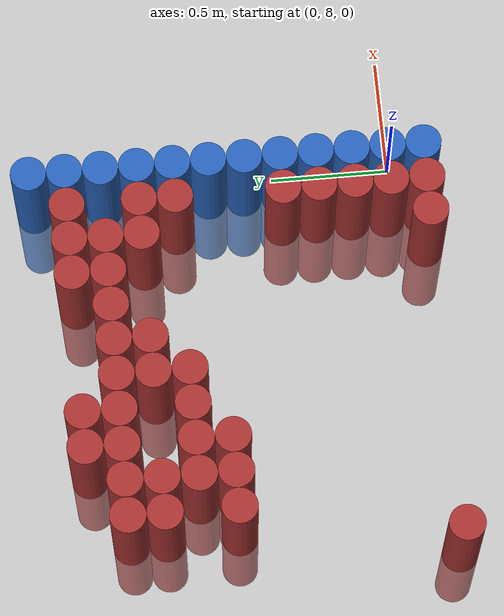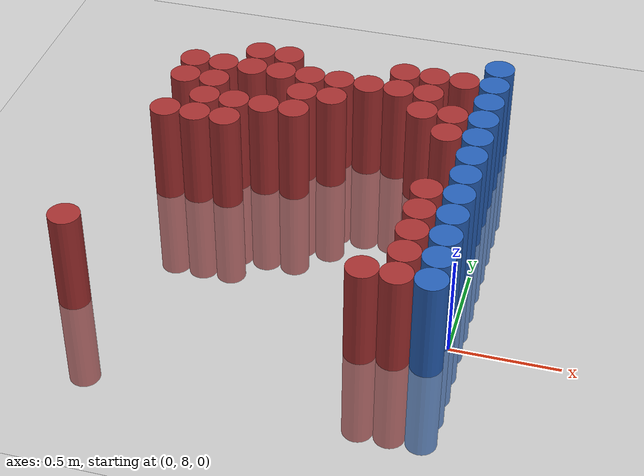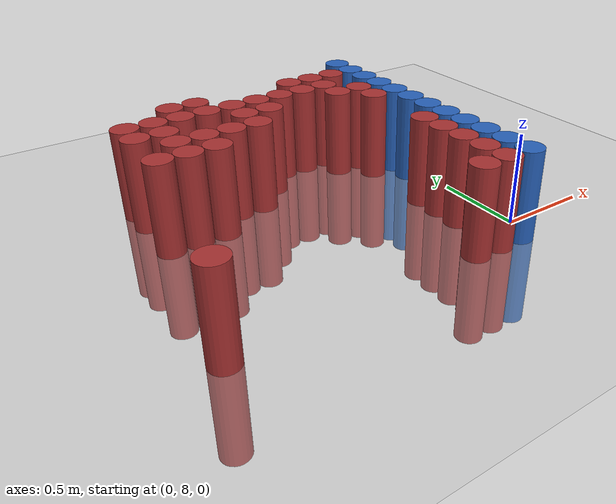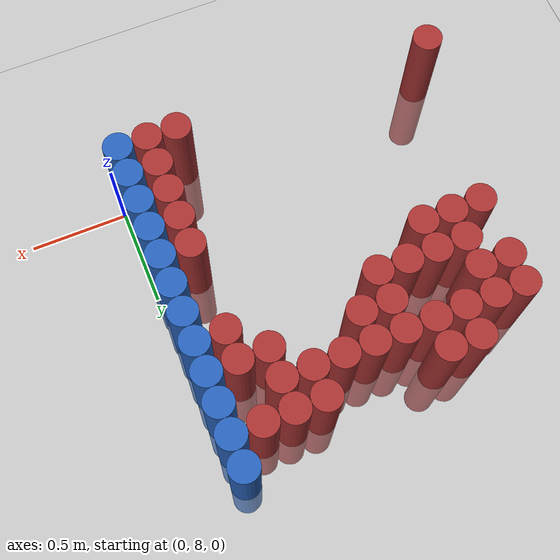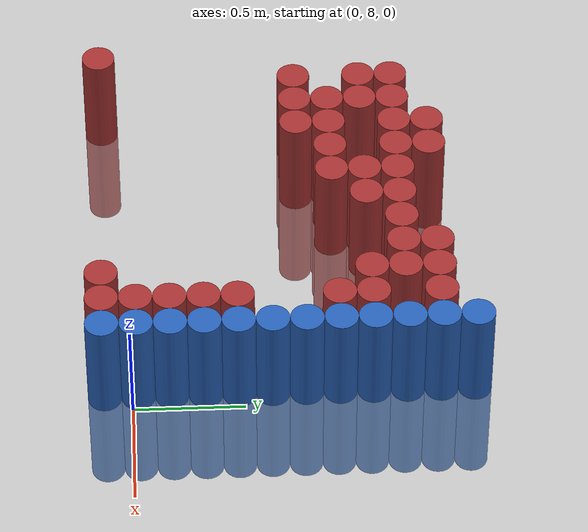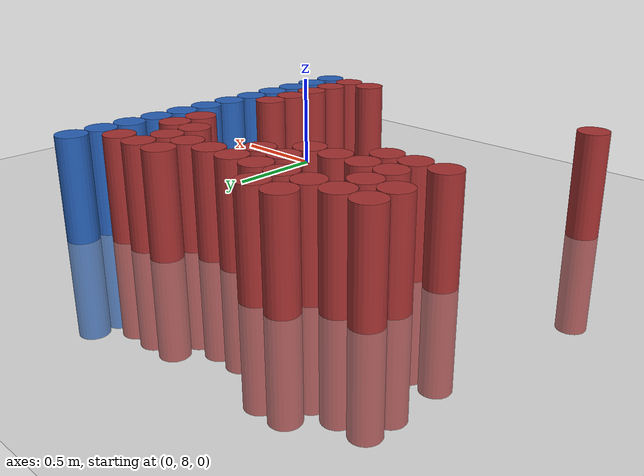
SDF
<sdf version="1.6">
 <world name="default">
  <model name="ground_plane">
   <static>1</static>
   <link name="link">
    <collision name="collision">
     <geometry><plane><normal>0 0 1</normal><size>100 100</size></plane></geometry>
     <surface><friction><ode><mu>100</mu><mu2>50</mu2></ode></friction></surface>
    </collision>
    <visual name="visual">
     <cast_shadows>0</cast_shadows>
     <geometry><plane><normal>0 0 1</normal><size>100 100</size></plane></geometry>
     <material>
      <script><uri>file://media/materials/scripts/gazebo.material</uri><name>Gazebo/Grey</name></script>
     </material>
    </visual>
   </link>
  </model>
  <model name="unit_cylinder_243">
   <static>1</static>
   <pose>-1.725000 7.875000 0.000000 0.000000 0.000000 0.000000</pose>
   <link name="link">
    <inertial>
     <mass>1</mass>
     <inertia><ixx>0.145833</ixx><ixy>0</ixy><ixz>0</ixz><iyy>0.145833</iyy><iyz>0</iyz><izz>0.125</izz></inertia>
    </inertial>
    <collision name="collision">
     <geometry><cylinder><radius>0.075000</radius><length>1</length></cylinder></geometry>
    </collision>
    <visual name="visual">
     <geometry><cylinder><radius>0.075000</radius><length>1</length></cylinder></geometry>
     <material>
      <ambient>0.648000 0.192000 0.192000 1</ambient>
      <diffuse>0.648000 0.192000 0.192000 1</diffuse>
     </material>
     <material>
      <script><name>Gazebo/Grey</name><uri>file://media/materials/scripts/gazebo.material</uri></script>
     </material>
    </visual>
   </link>
  </model>
  <model name="unit_cylinder_248">
   <static>1</static>
   <pose>-1.575000 8.775000 0.000000 0.000000 0.000000 0.000000</pose>
   <link name="link">
    <inertial>
     <mass>1</mass>
     <inertia><ixx>0.145833</ixx><ixy>0</ixy><ixz>0</ixz><iyy>0.145833</iyy><iyz>0</iyz><izz>0.125</izz></inertia>
    </inertial>
    <collision name="collision">
     <geometry><cylinder><radius>0.075000</radius><length>1</length></cylinder></geometry>
    </collision>
    <visual name="visual">
     <geometry><cylinder><radius>0.075000</radius><length>1</length></cylinder></geometry>
     <material>
      <ambient>0.648000 0.192000 0.192000 1</ambient>
      <diffuse>0.648000 0.192000 0.192000 1</diffuse>
     </material>
     <material>
      <script><name>Gazebo/Grey</name><uri>file://media/materials/scripts/gazebo.material</uri></script>
     </material>
    </visual>
   </link>
  </model>
  <model name="unit_cylinder_249">
   <static>1</static>
   <pose>-1.575000 9.075000 0.000000 0.000000 0.000000 0.000000</pose>
   <link name="link">
    <inertial>
     <mass>1</mass>
     <inertia><ixx>0.145833</ixx><ixy>0</ixy><ixz>0</ixz><iyy>0.145833</iyy><iyz>0</iyz><izz>0.125</izz></inertia>
    </inertial>
    <collision name="collision">
     <geometry><cylinder><radius>0.075000</radius><length>1</length></cylinder></geometry>
    </collision>
    <visual name="visual">
     <geometry><cylinder><radius>0.075000</radius><length>1</length></cylinder></geometry>
     <material>
      <ambient>0.648000 0.192000 0.192000 1</ambient>
      <diffuse>0.648000 0.192000 0.192000 1</diffuse>
     </material>
     <material>
      <script><name>Gazebo/Grey</name><uri>file://media/materials/scripts/gazebo.material</uri></script>
     </material>
    </visual>
   </link>
  </model>
  <model name="unit_cylinder_250">
   <static>1</static>
   <pose>-1.575000 9.225000 0.000000 0.000000 0.000000 0.000000</pose>
   <link name="link">
    <inertial>
     <mass>1</mass>
     <inertia><ixx>0.145833</ixx><ixy>0</ixy><ixz>0</ixz><iyy>0.145833</iyy><iyz>0</iyz><izz>0.125</izz></inertia>
    </inertial>
    <collision name="collision">
     <geometry><cylinder><radius>0.075000</radius><length>1</length></cylinder></geometry>
    </collision>
    <visual name="visual">
     <geometry><cylinder><radius>0.075000</radius><length>1</length></cylinder></geometry>
     <material>
      <ambient>0.648000 0.192000 0.192000 1</ambient>
      <diffuse>0.648000 0.192000 0.192000 1</diffuse>
     </material>
     <material>
      <script><name>Gazebo/Grey</name><uri>file://media/materials/scripts/gazebo.material</uri></script>
     </material>
    </visual>
   </link>
  </model>
  <model name="unit_cylinder_255">
   <static>1</static>
   <pose>-1.425000 8.775000 0.000000 0.000000 0.000000 0.000000</pose>
   <link name="link">
    <inertial>
     <mass>1</mass>
     <inertia><ixx>0.145833</ixx><ixy>0</ixy><ixz>0</ixz><iyy>0.145833</iyy><iyz>0</iyz><izz>0.125</izz></inertia>
    </inertial>
    <collision name="collision">
     <geometry><cylinder><radius>0.075000</radius><length>1</length></cylinder></geometry>
    </collision>
    <visual name="visual">
     <geometry><cylinder><radius>0.075000</radius><length>1</length></cylinder></geometry>
     <material>
      <ambient>0.648000 0.192000 0.192000 1</ambient>
      <diffuse>0.648000 0.192000 0.192000 1</diffuse>
     </material>
     <material>
      <script><name>Gazebo/Grey</name><uri>file://media/materials/scripts/gazebo.material</uri></script>
     </material>
    </visual>
   </link>
  </model>
  <model name="unit_cylinder_256">
   <static>1</static>
   <pose>-1.425000 8.925000 0.000000 0.000000 0.000000 0.000000</pose>
   <link name="link">
    <inertial>
     <mass>1</mass>
     <inertia><ixx>0.145833</ixx><ixy>0</ixy><ixz>0</ixz><iyy>0.145833</iyy><iyz>0</iyz><izz>0.125</izz></inertia>
    </inertial>
    <collision name="collision">
     <geometry><cylinder><radius>0.075000</radius><length>1</length></cylinder></geometry>
    </collision>
    <visual name="visual">
     <geometry><cylinder><radius>0.075000</radius><length>1</length></cylinder></geometry>
     <material>
      <ambient>0.648000 0.192000 0.192000 1</ambient>
      <diffuse>0.648000 0.192000 0.192000 1</diffuse>
     </material>
     <material>
      <script><name>Gazebo/Grey</name><uri>file://media/materials/scripts/gazebo.material</uri></script>
     </material>
    </visual>
   </link>
  </model>
  <model name="unit_cylinder_257">
   <static>1</static>
   <pose>-1.425000 9.075000 0.000000 0.000000 0.000000 0.000000</pose>
   <link name="link">
    <inertial>
     <mass>1</mass>
     <inertia><ixx>0.145833</ixx><ixy>0</ixy><ixz>0</ixz><iyy>0.145833</iyy><iyz>0</iyz><izz>0.125</izz></inertia>
    </inertial>
    <collision name="collision">
     <geometry><cylinder><radius>0.075000</radius><length>1</length></cylinder></geometry>
    </collision>
    <visual name="visual">
     <geometry><cylinder><radius>0.075000</radius><length>1</length></cylinder></geometry>
     <material>
      <ambient>0.648000 0.192000 0.192000 1</ambient>
      <diffuse>0.648000 0.192000 0.192000 1</diffuse>
     </material>
     <material>
      <script><name>Gazebo/Grey</name><uri>file://media/materials/scripts/gazebo.material</uri></script>
     </material>
    </visual>
   </link>
  </model>
  <model name="unit_cylinder_258">
   <static>1</static>
   <pose>-1.425000 9.225000 0.000000 0.000000 0.000000 0.000000</pose>
   <link name="link">
    <inertial>
     <mass>1</mass>
     <inertia><ixx>0.145833</ixx><ixy>0</ixy><ixz>0</ixz><iyy>0.145833</iyy><iyz>0</iyz><izz>0.125</izz></inertia>
    </inertial>
    <collision name="collision">
     <geometry><cylinder><radius>0.075000</radius><length>1</length></cylinder></geometry>
    </collision>
    <visual name="visual">
     <geometry><cylinder><radius>0.075000</radius><length>1</length></cylinder></geometry>
     <material>
      <ambient>0.648000 0.192000 0.192000 1</ambient>
      <diffuse>0.648000 0.192000 0.192000 1</diffuse>
     </material>
     <material>
      <script><name>Gazebo/Grey</name><uri>file://media/materials/scripts/gazebo.material</uri></script>
     </material>
    </visual>
   </link>
  </model>
  <model name="unit_cylinder_260">
   <static>1</static>
   <pose>-1.275000 8.775000 0.000000 0.000000 0.000000 0.000000</pose>
   <link name="link">
    <inertial>
     <mass>1</mass>
     <inertia><ixx>0.145833</ixx><ixy>0</ixy><ixz>0</ixz><iyy>0.145833</iyy><iyz>0</iyz><izz>0.125</izz></inertia>
    </inertial>
    <collision name="collision">
     <geometry><cylinder><radius>0.075000</radius><length>1</length></cylinder></geometry>
    </collision>
    <visual name="visual">
     <geometry><cylinder><radius>0.075000</radius><length>1</length></cylinder></geometry>
     <material>
      <ambient>0.648000 0.192000 0.192000 1</ambient>
      <diffuse>0.648000 0.192000 0.192000 1</diffuse>
     </material>
     <material>
      <script><name>Gazebo/Grey</name><uri>file://media/materials/scripts/gazebo.material</uri></script>
     </material>
    </visual>
   </link>
  </model>
  <model name="unit_cylinder_261">
   <static>1</static>
   <pose>-1.275000 8.925000 0.000000 0.000000 0.000000 0.000000</pose>
   <link name="link">
    <inertial>
     <mass>1</mass>
     <inertia><ixx>0.145833</ixx><ixy>0</ixy><ixz>0</ixz><iyy>0.145833</iyy><iyz>0</iyz><izz>0.125</izz></inertia>
    </inertial>
    <collision name="collision">
     <geometry><cylinder><radius>0.075000</radius><length>1</length></cylinder></geometry>
    </collision>
    <visual name="visual">
     <geometry><cylinder><radius>0.075000</radius><length>1</length></cylinder></geometry>
     <material>
      <ambient>0.648000 0.192000 0.192000 1</ambient>
      <diffuse>0.648000 0.192000 0.192000 1</diffuse>
     </material>
     <material>
      <script><name>Gazebo/Grey</name><uri>file://media/materials/scripts/gazebo.material</uri></script>
     </material>
    </visual>
   </link>
  </model>
  <model name="unit_cylinder_262">
   <static>1</static>
   <pose>-1.275000 9.225000 0.000000 0.000000 0.000000 0.000000</pose>
   <link name="link">
    <inertial>
     <mass>1</mass>
     <inertia><ixx>0.145833</ixx><ixy>0</ixy><ixz>0</ixz><iyy>0.145833</iyy><iyz>0</iyz><izz>0.125</izz></inertia>
    </inertial>
    <collision name="collision">
     <geometry><cylinder><radius>0.075000</radius><length>1</length></cylinder></geometry>
    </collision>
    <visual name="visual">
     <geometry><cylinder><radius>0.075000</radius><length>1</length></cylinder></geometry>
     <material>
      <ambient>0.648000 0.192000 0.192000 1</ambient>
      <diffuse>0.648000 0.192000 0.192000 1</diffuse>
     </material>
     <material>
      <script><name>Gazebo/Grey</name><uri>file://media/materials/scripts/gazebo.material</uri></script>
     </material>
    </visual>
   </link>
  </model>
  <model name="unit_cylinder_263">
   <static>1</static>
   <pose>-1.275000 9.375000 0.000000 0.000000 0.000000 0.000000</pose>
   <link name="link">
    <inertial>
     <mass>1</mass>
     <inertia><ixx>0.145833</ixx><ixy>0</ixy><ixz>0</ixz><iyy>0.145833</iyy><iyz>0</iyz><izz>0.125</izz></inertia>
    </inertial>
    <collision name="collision">
     <geometry><cylinder><radius>0.075000</radius><length>1</length></cylinder></geometry>
    </collision>
    <visual name="visual">
     <geometry><cylinder><radius>0.075000</radius><length>1</length></cylinder></geometry>
     <material>
      <ambient>0.648000 0.192000 0.192000 1</ambient>
      <diffuse>0.648000 0.192000 0.192000 1</diffuse>
     </material>
     <material>
      <script><name>Gazebo/Grey</name><uri>file://media/materials/scripts/gazebo.material</uri></script>
     </material>
    </visual>
   </link>
  </model>
  <model name="unit_cylinder_264">
   <static>1</static>
   <pose>-1.125000 8.925000 0.000000 0.000000 0.000000 0.000000</pose>
   <link name="link">
    <inertial>
     <mass>1</mass>
     <inertia><ixx>0.145833</ixx><ixy>0</ixy><ixz>0</ixz><iyy>0.145833</iyy><iyz>0</iyz><izz>0.125</izz></inertia>
    </inertial>
    <collision name="collision">
     <geometry><cylinder><radius>0.075000</radius><length>1</length></cylinder></geometry>
    </collision>
    <visual name="visual">
     <geometry><cylinder><radius>0.075000</radius><length>1</length></cylinder></geometry>
     <material>
      <ambient>0.648000 0.192000 0.192000 1</ambient>
      <diffuse>0.648000 0.192000 0.192000 1</diffuse>
     </material>
     <material>
      <script><name>Gazebo/Grey</name><uri>file://media/materials/scripts/gazebo.material</uri></script>
     </material>
    </visual>
   </link>
  </model>
  <model name="unit_cylinder_265">
   <static>1</static>
   <pose>-1.125000 9.225000 0.000000 0.000000 0.000000 0.000000</pose>
   <link name="link">
    <inertial>
     <mass>1</mass>
     <inertia><ixx>0.145833</ixx><ixy>0</ixy><ixz>0</ixz><iyy>0.145833</iyy><iyz>0</iyz><izz>0.125</izz></inertia>
    </inertial>
    <collision name="collision">
     <geometry><cylinder><radius>0.075000</radius><length>1</length></cylinder></geometry>
    </collision>
    <visual name="visual">
     <geometry><cylinder><radius>0.075000</radius><length>1</length></cylinder></geometry>
     <material>
      <ambient>0.648000 0.192000 0.192000 1</ambient>
      <diffuse>0.648000 0.192000 0.192000 1</diffuse>
     </material>
     <material>
      <script><name>Gazebo/Grey</name><uri>file://media/materials/scripts/gazebo.material</uri></script>
     </material>
    </visual>
   </link>
  </model>
  <model name="unit_cylinder_266">
   <static>1</static>
   <pose>-1.125000 9.375000 0.000000 0.000000 0.000000 0.000000</pose>
   <link name="link">
    <inertial>
     <mass>1</mass>
     <inertia><ixx>0.145833</ixx><ixy>0</ixy><ixz>0</ixz><iyy>0.145833</iyy><iyz>0</iyz><izz>0.125</izz></inertia>
    </inertial>
    <collision name="collision">
     <geometry><cylinder><radius>0.075000</radius><length>1</length></cylinder></geometry>
    </collision>
    <visual name="visual">
     <geometry><cylinder><radius>0.075000</radius><length>1</length></cylinder></geometry>
     <material>
      <ambient>0.648000 0.192000 0.192000 1</ambient>
      <diffuse>0.648000 0.192000 0.192000 1</diffuse>
     </material>
     <material>
      <script><name>Gazebo/Grey</name><uri>file://media/materials/scripts/gazebo.material</uri></script>
     </material>
    </visual>
   </link>
  </model>
  <model name="unit_cylinder_267">
   <static>1</static>
   <pose>-0.975000 8.925000 0.000000 0.000000 0.000000 0.000000</pose>
   <link name="link">
    <inertial>
     <mass>1</mass>
     <inertia><ixx>0.145833</ixx><ixy>0</ixy><ixz>0</ixz><iyy>0.145833</iyy><iyz>0</iyz><izz>0.125</izz></inertia>
    </inertial>
    <collision name="collision">
     <geometry><cylinder><radius>0.075000</radius><length>1</length></cylinder></geometry>
    </collision>
    <visual name="visual">
     <geometry><cylinder><radius>0.075000</radius><length>1</length></cylinder></geometry>
     <material>
      <ambient>0.648000 0.192000 0.192000 1</ambient>
      <diffuse>0.648000 0.192000 0.192000 1</diffuse>
     </material>
     <material>
      <script><name>Gazebo/Grey</name><uri>file://media/materials/scripts/gazebo.material</uri></script>
     </material>
    </visual>
   </link>
  </model>
  <model name="unit_cylinder_268">
   <static>1</static>
   <pose>-0.975000 9.075000 0.000000 0.000000 0.000000 0.000000</pose>
   <link name="link">
    <inertial>
     <mass>1</mass>
     <inertia><ixx>0.145833</ixx><ixy>0</ixy><ixz>0</ixz><iyy>0.145833</iyy><iyz>0</iyz><izz>0.125</izz></inertia>
    </inertial>
    <collision name="collision">
     <geometry><cylinder><radius>0.075000</radius><length>1</length></cylinder></geometry>
    </collision>
    <visual name="visual">
     <geometry><cylinder><radius>0.075000</radius><length>1</length></cylinder></geometry>
     <material>
      <ambient>0.648000 0.192000 0.192000 1</ambient>
      <diffuse>0.648000 0.192000 0.192000 1</diffuse>
     </material>
     <material>
      <script><name>Gazebo/Grey</name><uri>file://media/materials/scripts/gazebo.material</uri></script>
     </material>
    </visual>
   </link>
  </model>
  <model name="unit_cylinder_269">
   <static>1</static>
   <pose>-0.975000 9.225000 0.000000 0.000000 0.000000 0.000000</pose>
   <link name="link">
    <inertial>
     <mass>1</mass>
     <inertia><ixx>0.145833</ixx><ixy>0</ixy><ixz>0</ixz><iyy>0.145833</iyy><iyz>0</iyz><izz>0.125</izz></inertia>
    </inertial>
    <collision name="collision">
     <geometry><cylinder><radius>0.075000</radius><length>1</length></cylinder></geometry>
    </collision>
    <visual name="visual">
     <geometry><cylinder><radius>0.075000</radius><length>1</length></cylinder></geometry>
     <material>
      <ambient>0.648000 0.192000 0.192000 1</ambient>
      <diffuse>0.648000 0.192000 0.192000 1</diffuse>
     </material>
     <material>
      <script><name>Gazebo/Grey</name><uri>file://media/materials/scripts/gazebo.material</uri></script>
     </material>
    </visual>
   </link>
  </model>
  <model name="unit_cylinder_270">
   <static>1</static>
   <pose>-0.825000 9.075000 0.000000 0.000000 0.000000 0.000000</pose>
   <link name="link">
    <inertial>
     <mass>1</mass>
     <inertia><ixx>0.145833</ixx><ixy>0</ixy><ixz>0</ixz><iyy>0.145833</iyy><iyz>0</iyz><izz>0.125</izz></inertia>
    </inertial>
    <collision name="collision">
     <geometry><cylinder><radius>0.075000</radius><length>1</length></cylinder></geometry>
    </collision>
    <visual name="visual">
     <geometry><cylinder><radius>0.075000</radius><length>1</length></cylinder></geometry>
     <material>
      <ambient>0.648000 0.192000 0.192000 1</ambient>
      <diffuse>0.648000 0.192000 0.192000 1</diffuse>
     </material>
     <material>
      <script><name>Gazebo/Grey</name><uri>file://media/materials/scripts/gazebo.material</uri></script>
     </material>
    </visual>
   </link>
  </model>
  <model name="unit_cylinder_271">
   <static>1</static>
   <pose>-0.825000 9.225000 0.000000 0.000000 0.000000 0.000000</pose>
   <link name="link">
    <inertial>
     <mass>1</mass>
     <inertia><ixx>0.145833</ixx><ixy>0</ixy><ixz>0</ixz><iyy>0.145833</iyy><iyz>0</iyz><izz>0.125</izz></inertia>
    </inertial>
    <collision name="collision">
     <geometry><cylinder><radius>0.075000</radius><length>1</length></cylinder></geometry>
    </collision>
    <visual name="visual">
     <geometry><cylinder><radius>0.075000</radius><length>1</length></cylinder></geometry>
     <material>
      <ambient>0.648000 0.192000 0.192000 1</ambient>
      <diffuse>0.648000 0.192000 0.192000 1</diffuse>
     </material>
     <material>
      <script><name>Gazebo/Grey</name><uri>file://media/materials/scripts/gazebo.material</uri></script>
     </material>
    </visual>
   </link>
  </model>
  <model name="unit_cylinder_272">
   <static>1</static>
   <pose>-0.675000 9.225000 0.000000 0.000000 0.000000 0.000000</pose>
   <link name="link">
    <inertial>
     <mass>1</mass>
     <inertia><ixx>0.145833</ixx><ixy>0</ixy><ixz>0</ixz><iyy>0.145833</iyy><iyz>0</iyz><izz>0.125</izz></inertia>
    </inertial>
    <collision name="collision">
     <geometry><cylinder><radius>0.075000</radius><length>1</length></cylinder></geometry>
    </collision>
    <visual name="visual">
     <geometry><cylinder><radius>0.075000</radius><length>1</length></cylinder></geometry>
     <material>
      <ambient>0.648000 0.192000 0.192000 1</ambient>
      <diffuse>0.648000 0.192000 0.192000 1</diffuse>
     </material>
     <material>
      <script><name>Gazebo/Grey</name><uri>file://media/materials/scripts/gazebo.material</uri></script>
     </material>
    </visual>
   </link>
  </model>
  <model name="unit_cylinder_273">
   <static>1</static>
   <pose>-0.525000 9.225000 0.000000 0.000000 0.000000 0.000000</pose>
   <link name="link">
    <inertial>
     <mass>1</mass>
     <inertia><ixx>0.145833</ixx><ixy>0</ixy><ixz>0</ixz><iyy>0.145833</iyy><iyz>0</iyz><izz>0.125</izz></inertia>
    </inertial>
    <collision name="collision">
     <geometry><cylinder><radius>0.075000</radius><length>1</length></cylinder></geometry>
    </collision>
    <visual name="visual">
     <geometry><cylinder><radius>0.075000</radius><length>1</length></cylinder></geometry>
     <material>
      <ambient>0.648000 0.192000 0.192000 1</ambient>
      <diffuse>0.648000 0.192000 0.192000 1</diffuse>
     </material>
     <material>
      <script><name>Gazebo/Grey</name><uri>file://media/materials/scripts/gazebo.material</uri></script>
     </material>
    </visual>
   </link>
  </model>
  <model name="unit_cylinder_274">
   <static>1</static>
   <pose>-0.525000 9.375000 0.000000 0.000000 0.000000 0.000000</pose>
   <link name="link">
    <inertial>
     <mass>1</mass>
     <inertia><ixx>0.145833</ixx><ixy>0</ixy><ixz>0</ixz><iyy>0.145833</iyy><iyz>0</iyz><izz>0.125</izz></inertia>
    </inertial>
    <collision name="collision">
     <geometry><cylinder><radius>0.075000</radius><length>1</length></cylinder></geometry>
    </collision>
    <visual name="visual">
     <geometry><cylinder><radius>0.075000</radius><length>1</length></cylinder></geometry>
     <material>
      <ambient>0.648000 0.192000 0.192000 1</ambient>
      <diffuse>0.648000 0.192000 0.192000 1</diffuse>
     </material>
     <material>
      <script><name>Gazebo/Grey</name><uri>file://media/materials/scripts/gazebo.material</uri></script>
     </material>
    </visual>
   </link>
  </model>
  <model name="unit_cylinder_276">
   <static>1</static>
   <pose>-0.375000 7.875000 0.000000 0.000000 0.000000 0.000000</pose>
   <link name="link">
    <inertial>
     <mass>1</mass>
     <inertia><ixx>0.145833</ixx><ixy>0</ixy><ixz>0</ixz><iyy>0.145833</iyy><iyz>0</iyz><izz>0.125</izz></inertia>
    </inertial>
    <collision name="collision">
     <geometry><cylinder><radius>0.075000</radius><length>1</length></cylinder></geometry>
    </collision>
    <visual name="visual">
     <geometry><cylinder><radius>0.075000</radius><length>1</length></cylinder></geometry>
     <material>
      <ambient>0.648000 0.192000 0.192000 1</ambient>
      <diffuse>0.648000 0.192000 0.192000 1</diffuse>
     </material>
     <material>
      <script><name>Gazebo/Grey</name><uri>file://media/materials/scripts/gazebo.material</uri></script>
     </material>
    </visual>
   </link>
  </model>
  <model name="unit_cylinder_277">
   <static>1</static>
   <pose>-0.375000 9.075000 0.000000 0.000000 0.000000 0.000000</pose>
   <link name="link">
    <inertial>
     <mass>1</mass>
     <inertia><ixx>0.145833</ixx><ixy>0</ixy><ixz>0</ixz><iyy>0.145833</iyy><iyz>0</iyz><izz>0.125</izz></inertia>
    </inertial>
    <collision name="collision">
     <geometry><cylinder><radius>0.075000</radius><length>1</length></cylinder></geometry>
    </collision>
    <visual name="visual">
     <geometry><cylinder><radius>0.075000</radius><length>1</length></cylinder></geometry>
     <material>
      <ambient>0.648000 0.192000 0.192000 1</ambient>
      <diffuse>0.648000 0.192000 0.192000 1</diffuse>
     </material>
     <material>
      <script><name>Gazebo/Grey</name><uri>file://media/materials/scripts/gazebo.material</uri></script>
     </material>
    </visual>
   </link>
  </model>
  <model name="unit_cylinder_278">
   <static>1</static>
   <pose>-0.375000 9.225000 0.000000 0.000000 0.000000 0.000000</pose>
   <link name="link">
    <inertial>
     <mass>1</mass>
     <inertia><ixx>0.145833</ixx><ixy>0</ixy><ixz>0</ixz><iyy>0.145833</iyy><iyz>0</iyz><izz>0.125</izz></inertia>
    </inertial>
    <collision name="collision">
     <geometry><cylinder><radius>0.075000</radius><length>1</length></cylinder></geometry>
    </collision>
    <visual name="visual">
     <geometry><cylinder><radius>0.075000</radius><length>1</length></cylinder></geometry>
     <material>
      <ambient>0.648000 0.192000 0.192000 1</ambient>
      <diffuse>0.648000 0.192000 0.192000 1</diffuse>
     </material>
     <material>
      <script><name>Gazebo/Grey</name><uri>file://media/materials/scripts/gazebo.material</uri></script>
     </material>
    </visual>
   </link>
  </model>
  <model name="unit_cylinder_279">
   <static>1</static>
   <pose>-0.375000 9.375000 0.000000 0.000000 0.000000 0.000000</pose>
   <link name="link">
    <inertial>
     <mass>1</mass>
     <inertia><ixx>0.145833</ixx><ixy>0</ixy><ixz>0</ixz><iyy>0.145833</iyy><iyz>0</iyz><izz>0.125</izz></inertia>
    </inertial>
    <collision name="collision">
     <geometry><cylinder><radius>0.075000</radius><length>1</length></cylinder></geometry>
    </collision>
    <visual name="visual">
     <geometry><cylinder><radius>0.075000</radius><length>1</length></cylinder></geometry>
     <material>
      <ambient>0.648000 0.192000 0.192000 1</ambient>
      <diffuse>0.648000 0.192000 0.192000 1</diffuse>
     </material>
     <material>
      <script><name>Gazebo/Grey</name><uri>file://media/materials/scripts/gazebo.material</uri></script>
     </material>
    </visual>
   </link>
  </model>
  <model name="unit_cylinder_292">
   <static>1</static>
   <pose>-0.225000 7.875000 0.000000 0.000000 0.000000 0.000000</pose>
   <link name="link">
    <inertial>
     <mass>1</mass>
     <inertia><ixx>0.145833</ixx><ixy>0</ixy><ixz>0</ixz><iyy>0.145833</iyy><iyz>0</iyz><izz>0.125</izz></inertia>
    </inertial>
    <collision name="collision">
     <geometry><cylinder><radius>0.075000</radius><length>1</length></cylinder></geometry>
    </collision>
    <visual name="visual">
     <geometry><cylinder><radius>0.075000</radius><length>1</length></cylinder></geometry>
     <material>
      <ambient>0.648000 0.192000 0.192000 1</ambient>
      <diffuse>0.648000 0.192000 0.192000 1</diffuse>
     </material>
     <material>
      <script><name>Gazebo/Grey</name><uri>file://media/materials/scripts/gazebo.material</uri></script>
     </material>
    </visual>
   </link>
  </model>
  <model name="unit_cylinder_293">
   <static>1</static>
   <pose>-0.225000 8.025000 0.000000 0.000000 0.000000 0.000000</pose>
   <link name="link">
    <inertial>
     <mass>1</mass>
     <inertia><ixx>0.145833</ixx><ixy>0</ixy><ixz>0</ixz><iyy>0.145833</iyy><iyz>0</iyz><izz>0.125</izz></inertia>
    </inertial>
    <collision name="collision">
     <geometry><cylinder><radius>0.075000</radius><length>1</length></cylinder></geometry>
    </collision>
    <visual name="visual">
     <geometry><cylinder><radius>0.075000</radius><length>1</length></cylinder></geometry>
     <material>
      <ambient>0.648000 0.192000 0.192000 1</ambient>
      <diffuse>0.648000 0.192000 0.192000 1</diffuse>
     </material>
     <material>
      <script><name>Gazebo/Grey</name><uri>file://media/materials/scripts/gazebo.material</uri></script>
     </material>
    </visual>
   </link>
  </model>
  <model name="unit_cylinder_294">
   <static>1</static>
   <pose>-0.225000 8.175000 0.000000 0.000000 0.000000 0.000000</pose>
   <link name="link">
    <inertial>
     <mass>1</mass>
     <inertia><ixx>0.145833</ixx><ixy>0</ixy><ixz>0</ixz><iyy>0.145833</iyy><iyz>0</iyz><izz>0.125</izz></inertia>
    </inertial>
    <collision name="collision">
     <geometry><cylinder><radius>0.075000</radius><length>1</length></cylinder></geometry>
    </collision>
    <visual name="visual">
     <geometry><cylinder><radius>0.075000</radius><length>1</length></cylinder></geometry>
     <material>
      <ambient>0.648000 0.192000 0.192000 1</ambient>
      <diffuse>0.648000 0.192000 0.192000 1</diffuse>
     </material>
     <material>
      <script><name>Gazebo/Grey</name><uri>file://media/materials/scripts/gazebo.material</uri></script>
     </material>
    </visual>
   </link>
  </model>
  <model name="unit_cylinder_295">
   <static>1</static>
   <pose>-0.225000 8.325000 0.000000 0.000000 0.000000 0.000000</pose>
   <link name="link">
    <inertial>
     <mass>1</mass>
     <inertia><ixx>0.145833</ixx><ixy>0</ixy><ixz>0</ixz><iyy>0.145833</iyy><iyz>0</iyz><izz>0.125</izz></inertia>
    </inertial>
    <collision name="collision">
     <geometry><cylinder><radius>0.075000</radius><length>1</length></cylinder></geometry>
    </collision>
    <visual name="visual">
     <geometry><cylinder><radius>0.075000</radius><length>1</length></cylinder></geometry>
     <material>
      <ambient>0.648000 0.192000 0.192000 1</ambient>
      <diffuse>0.648000 0.192000 0.192000 1</diffuse>
     </material>
     <material>
      <script><name>Gazebo/Grey</name><uri>file://media/materials/scripts/gazebo.material</uri></script>
     </material>
    </visual>
   </link>
  </model>
  <model name="unit_cylinder_296">
   <static>1</static>
   <pose>-0.225000 8.475000 0.000000 0.000000 0.000000 0.000000</pose>
   <link name="link">
    <inertial>
     <mass>1</mass>
     <inertia><ixx>0.145833</ixx><ixy>0</ixy><ixz>0</ixz><iyy>0.145833</iyy><iyz>0</iyz><izz>0.125</izz></inertia>
    </inertial>
    <collision name="collision">
     <geometry><cylinder><radius>0.075000</radius><length>1</length></cylinder></geometry>
    </collision>
    <visual name="visual">
     <geometry><cylinder><radius>0.075000</radius><length>1</length></cylinder></geometry>
     <material>
      <ambient>0.648000 0.192000 0.192000 1</ambient>
      <diffuse>0.648000 0.192000 0.192000 1</diffuse>
     </material>
     <material>
      <script><name>Gazebo/Grey</name><uri>file://media/materials/scripts/gazebo.material</uri></script>
     </material>
    </visual>
   </link>
  </model>
  <model name="unit_cylinder_297">
   <static>1</static>
   <pose>-0.225000 8.925000 0.000000 0.000000 0.000000 0.000000</pose>
   <link name="link">
    <inertial>
     <mass>1</mass>
     <inertia><ixx>0.145833</ixx><ixy>0</ixy><ixz>0</ixz><iyy>0.145833</iyy><iyz>0</iyz><izz>0.125</izz></inertia>
    </inertial>
    <collision name="collision">
     <geometry><cylinder><radius>0.075000</radius><length>1</length></cylinder></geometry>
    </collision>
    <visual name="visual">
     <geometry><cylinder><radius>0.075000</radius><length>1</length></cylinder></geometry>
     <material>
      <ambient>0.648000 0.192000 0.192000 1</ambient>
      <diffuse>0.648000 0.192000 0.192000 1</diffuse>
     </material>
     <material>
      <script><name>Gazebo/Grey</name><uri>file://media/materials/scripts/gazebo.material</uri></script>
     </material>
    </visual>
   </link>
  </model>
  <model name="unit_cylinder_298">
   <static>1</static>
   <pose>-0.225000 9.075000 0.000000 0.000000 0.000000 0.000000</pose>
   <link name="link">
    <inertial>
     <mass>1</mass>
     <inertia><ixx>0.145833</ixx><ixy>0</ixy><ixz>0</ixz><iyy>0.145833</iyy><iyz>0</iyz><izz>0.125</izz></inertia>
    </inertial>
    <collision name="collision">
     <geometry><cylinder><radius>0.075000</radius><length>1</length></cylinder></geometry>
    </collision>
    <visual name="visual">
     <geometry><cylinder><radius>0.075000</radius><length>1</length></cylinder></geometry>
     <material>
      <ambient>0.648000 0.192000 0.192000 1</ambient>
      <diffuse>0.648000 0.192000 0.192000 1</diffuse>
     </material>
     <material>
      <script><name>Gazebo/Grey</name><uri>file://media/materials/scripts/gazebo.material</uri></script>
     </material>
    </visual>
   </link>
  </model>
  <model name="unit_cylinder_299">
   <static>1</static>
   <pose>-0.225000 9.375000 0.000000 0.000000 0.000000 0.000000</pose>
   <link name="link">
    <inertial>
     <mass>1</mass>
     <inertia><ixx>0.145833</ixx><ixy>0</ixy><ixz>0</ixz><iyy>0.145833</iyy><iyz>0</iyz><izz>0.125</izz></inertia>
    </inertial>
    <collision name="collision">
     <geometry><cylinder><radius>0.075000</radius><length>1</length></cylinder></geometry>
    </collision>
    <visual name="visual">
     <geometry><cylinder><radius>0.075000</radius><length>1</length></cylinder></geometry>
     <material>
      <ambient>0.648000 0.192000 0.192000 1</ambient>
      <diffuse>0.648000 0.192000 0.192000 1</diffuse>
     </material>
     <material>
      <script><name>Gazebo/Grey</name><uri>file://media/materials/scripts/gazebo.material</uri></script>
     </material>
    </visual>
   </link>
  </model>
  <model name="unit_cylinder_318">
   <static>1</static>
   <pose>-0.075000 7.875000 0.000000 0.000000 0.000000 0.000000</pose>
   <link name="link">
    <inertial>
     <mass>1</mass>
     <inertia><ixx>0.145833</ixx><ixy>0</ixy><ixz>0</ixz><iyy>0.145833</iyy><iyz>0</iyz><izz>0.125</izz></inertia>
    </inertial>
    <collision name="collision">
     <geometry><cylinder><radius>0.075000</radius><length>1</length></cylinder></geometry>
    </collision>
    <visual name="visual">
     <geometry><cylinder><radius>0.075000</radius><length>1</length></cylinder></geometry>
     <material>
      <ambient>0.152000 0.379000 0.720000 1</ambient>
      <diffuse>0.152000 0.379000 0.720000 1</diffuse>
     </material>
     <material>
      <script><name>Gazebo/Grey</name><uri>file://media/materials/scripts/gazebo.material</uri></script>
     </material>
    </visual>
   </link>
  </model>
  <model name="unit_cylinder_319">
   <static>1</static>
   <pose>-0.075000 8.025000 0.000000 0.000000 0.000000 0.000000</pose>
   <link name="link">
    <inertial>
     <mass>1</mass>
     <inertia><ixx>0.145833</ixx><ixy>0</ixy><ixz>0</ixz><iyy>0.145833</iyy><iyz>0</iyz><izz>0.125</izz></inertia>
    </inertial>
    <collision name="collision">
     <geometry><cylinder><radius>0.075000</radius><length>1</length></cylinder></geometry>
    </collision>
    <visual name="visual">
     <geometry><cylinder><radius>0.075000</radius><length>1</length></cylinder></geometry>
     <material>
      <ambient>0.152000 0.379000 0.720000 1</ambient>
      <diffuse>0.152000 0.379000 0.720000 1</diffuse>
     </material>
     <material>
      <script><name>Gazebo/Grey</name><uri>file://media/materials/scripts/gazebo.material</uri></script>
     </material>
    </visual>
   </link>
  </model>
  <model name="unit_cylinder_320">
   <static>1</static>
   <pose>-0.075000 8.175000 0.000000 0.000000 0.000000 0.000000</pose>
   <link name="link">
    <inertial>
     <mass>1</mass>
     <inertia><ixx>0.145833</ixx><ixy>0</ixy><ixz>0</ixz><iyy>0.145833</iyy><iyz>0</iyz><izz>0.125</izz></inertia>
    </inertial>
    <collision name="collision">
     <geometry><cylinder><radius>0.075000</radius><length>1</length></cylinder></geometry>
    </collision>
    <visual name="visual">
     <geometry><cylinder><radius>0.075000</radius><length>1</length></cylinder></geometry>
     <material>
      <ambient>0.152000 0.379000 0.720000 1</ambient>
      <diffuse>0.152000 0.379000 0.720000 1</diffuse>
     </material>
     <material>
      <script><name>Gazebo/Grey</name><uri>file://media/materials/scripts/gazebo.material</uri></script>
     </material>
    </visual>
   </link>
  </model>
  <model name="unit_cylinder_321">
   <static>1</static>
   <pose>-0.075000 8.325000 0.000000 0.000000 0.000000 0.000000</pose>
   <link name="link">
    <inertial>
     <mass>1</mass>
     <inertia><ixx>0.145833</ixx><ixy>0</ixy><ixz>0</ixz><iyy>0.145833</iyy><iyz>0</iyz><izz>0.125</izz></inertia>
    </inertial>
    <collision name="collision">
     <geometry><cylinder><radius>0.075000</radius><length>1</length></cylinder></geometry>
    </collision>
    <visual name="visual">
     <geometry><cylinder><radius>0.075000</radius><length>1</length></cylinder></geometry>
     <material>
      <ambient>0.152000 0.379000 0.720000 1</ambient>
      <diffuse>0.152000 0.379000 0.720000 1</diffuse>
     </material>
     <material>
      <script><name>Gazebo/Grey</name><uri>file://media/materials/scripts/gazebo.material</uri></script>
     </material>
    </visual>
   </link>
  </model>
  <model name="unit_cylinder_322">
   <static>1</static>
   <pose>-0.075000 8.475000 0.000000 0.000000 0.000000 0.000000</pose>
   <link name="link">
    <inertial>
     <mass>1</mass>
     <inertia><ixx>0.145833</ixx><ixy>0</ixy><ixz>0</ixz><iyy>0.145833</iyy><iyz>0</iyz><izz>0.125</izz></inertia>
    </inertial>
    <collision name="collision">
     <geometry><cylinder><radius>0.075000</radius><length>1</length></cylinder></geometry>
    </collision>
    <visual name="visual">
     <geometry><cylinder><radius>0.075000</radius><length>1</length></cylinder></geometry>
     <material>
      <ambient>0.152000 0.379000 0.720000 1</ambient>
      <diffuse>0.152000 0.379000 0.720000 1</diffuse>
     </material>
     <material>
      <script><name>Gazebo/Grey</name><uri>file://media/materials/scripts/gazebo.material</uri></script>
     </material>
    </visual>
   </link>
  </model>
  <model name="unit_cylinder_323">
   <static>1</static>
   <pose>-0.075000 8.625000 0.000000 0.000000 0.000000 0.000000</pose>
   <link name="link">
    <inertial>
     <mass>1</mass>
     <inertia><ixx>0.145833</ixx><ixy>0</ixy><ixz>0</ixz><iyy>0.145833</iyy><iyz>0</iyz><izz>0.125</izz></inertia>
    </inertial>
    <collision name="collision">
     <geometry><cylinder><radius>0.075000</radius><length>1</length></cylinder></geometry>
    </collision>
    <visual name="visual">
     <geometry><cylinder><radius>0.075000</radius><length>1</length></cylinder></geometry>
     <material>
      <ambient>0.152000 0.379000 0.720000 1</ambient>
      <diffuse>0.152000 0.379000 0.720000 1</diffuse>
     </material>
     <material>
      <script><name>Gazebo/Grey</name><uri>file://media/materials/scripts/gazebo.material</uri></script>
     </material>
    </visual>
   </link>
  </model>
  <model name="unit_cylinder_324">
   <static>1</static>
   <pose>-0.075000 8.775000 0.000000 0.000000 0.000000 0.000000</pose>
   <link name="link">
    <inertial>
     <mass>1</mass>
     <inertia><ixx>0.145833</ixx><ixy>0</ixy><ixz>0</ixz><iyy>0.145833</iyy><iyz>0</iyz><izz>0.125</izz></inertia>
    </inertial>
    <collision name="collision">
     <geometry><cylinder><radius>0.075000</radius><length>1</length></cylinder></geometry>
    </collision>
    <visual name="visual">
     <geometry><cylinder><radius>0.075000</radius><length>1</length></cylinder></geometry>
     <material>
      <ambient>0.152000 0.379000 0.720000 1</ambient>
      <diffuse>0.152000 0.379000 0.720000 1</diffuse>
     </material>
     <material>
      <script><name>Gazebo/Grey</name><uri>file://media/materials/scripts/gazebo.material</uri></script>
     </material>
    </visual>
   </link>
  </model>
  <model name="unit_cylinder_325">
   <static>1</static>
   <pose>-0.075000 8.925000 0.000000 0.000000 0.000000 0.000000</pose>
   <link name="link">
    <inertial>
     <mass>1</mass>
     <inertia><ixx>0.145833</ixx><ixy>0</ixy><ixz>0</ixz><iyy>0.145833</iyy><iyz>0</iyz><izz>0.125</izz></inertia>
    </inertial>
    <collision name="collision">
     <geometry><cylinder><radius>0.075000</radius><length>1</length></cylinder></geometry>
    </collision>
    <visual name="visual">
     <geometry><cylinder><radius>0.075000</radius><length>1</length></cylinder></geometry>
     <material>
      <ambient>0.152000 0.379000 0.720000 1</ambient>
      <diffuse>0.152000 0.379000 0.720000 1</diffuse>
     </material>
     <material>
      <script><name>Gazebo/Grey</name><uri>file://media/materials/scripts/gazebo.material</uri></script>
     </material>
    </visual>
   </link>
  </model>
  <model name="unit_cylinder_326">
   <static>1</static>
   <pose>-0.075000 9.075000 0.000000 0.000000 0.000000 0.000000</pose>
   <link name="link">
    <inertial>
     <mass>1</mass>
     <inertia><ixx>0.145833</ixx><ixy>0</ixy><ixz>0</ixz><iyy>0.145833</iyy><iyz>0</iyz><izz>0.125</izz></inertia>
    </inertial>
    <collision name="collision">
     <geometry><cylinder><radius>0.075000</radius><length>1</length></cylinder></geometry>
    </collision>
    <visual name="visual">
     <geometry><cylinder><radius>0.075000</radius><length>1</length></cylinder></geometry>
     <material>
      <ambient>0.152000 0.379000 0.720000 1</ambient>
      <diffuse>0.152000 0.379000 0.720000 1</diffuse>
     </material>
     <material>
      <script><name>Gazebo/Grey</name><uri>file://media/materials/scripts/gazebo.material</uri></script>
     </material>
    </visual>
   </link>
  </model>
  <model name="unit_cylinder_327">
   <static>1</static>
   <pose>-0.075000 9.225000 0.000000 0.000000 0.000000 0.000000</pose>
   <link name="link">
    <inertial>
     <mass>1</mass>
     <inertia><ixx>0.145833</ixx><ixy>0</ixy><ixz>0</ixz><iyy>0.145833</iyy><iyz>0</iyz><izz>0.125</izz></inertia>
    </inertial>
    <collision name="collision">
     <geometry><cylinder><radius>0.075000</radius><length>1</length></cylinder></geometry>
    </collision>
    <visual name="visual">
     <geometry><cylinder><radius>0.075000</radius><length>1</length></cylinder></geometry>
     <material>
      <ambient>0.152000 0.379000 0.720000 1</ambient>
      <diffuse>0.152000 0.379000 0.720000 1</diffuse>
     </material>
     <material>
      <script><name>Gazebo/Grey</name><uri>file://media/materials/scripts/gazebo.material</uri></script>
     </material>
    </visual>
   </link>
  </model>
  <model name="unit_cylinder_328">
   <static>1</static>
   <pose>-0.075000 9.375000 0.000000 0.000000 0.000000 0.000000</pose>
   <link name="link">
    <inertial>
     <mass>1</mass>
     <inertia><ixx>0.145833</ixx><ixy>0</ixy><ixz>0</ixz><iyy>0.145833</iyy><iyz>0</iyz><izz>0.125</izz></inertia>
    </inertial>
    <collision name="collision">
     <geometry><cylinder><radius>0.075000</radius><length>1</length></cylinder></geometry>
    </collision>
    <visual name="visual">
     <geometry><cylinder><radius>0.075000</radius><length>1</length></cylinder></geometry>
     <material>
      <ambient>0.152000 0.379000 0.720000 1</ambient>
      <diffuse>0.152000 0.379000 0.720000 1</diffuse>
     </material>
     <material>
      <script><name>Gazebo/Grey</name><uri>file://media/materials/scripts/gazebo.material</uri></script>
     </material>
    </visual>
   </link>
  </model>
  <model name="unit_cylinder_329">
   <static>1</static>
   <pose>-0.075000 9.525000 0.000000 0.000000 0.000000 0.000000</pose>
   <link name="link">
    <inertial>
     <mass>1</mass>
     <inertia><ixx>0.145833</ixx><ixy>0</ixy><ixz>0</ixz><iyy>0.145833</iyy><iyz>0</iyz><izz>0.125</izz></inertia>
    </inertial>
    <collision name="collision">
     <geometry><cylinder><radius>0.075000</radius><length>1</length></cylinder></geometry>
    </collision>
    <visual name="visual">
     <geometry><cylinder><radius>0.075000</radius><length>1</length></cylinder></geometry>
     <material>
      <ambient>0.152000 0.379000 0.720000 1</ambient>
      <diffuse>0.152000 0.379000 0.720000 1</diffuse>
     </material>
     <material>
      <script><name>Gazebo/Grey</name><uri>file://media/materials/scripts/gazebo.material</uri></script>
     </material>
    </visual>
   </link>
  </model>
 </world>
</sdf>
